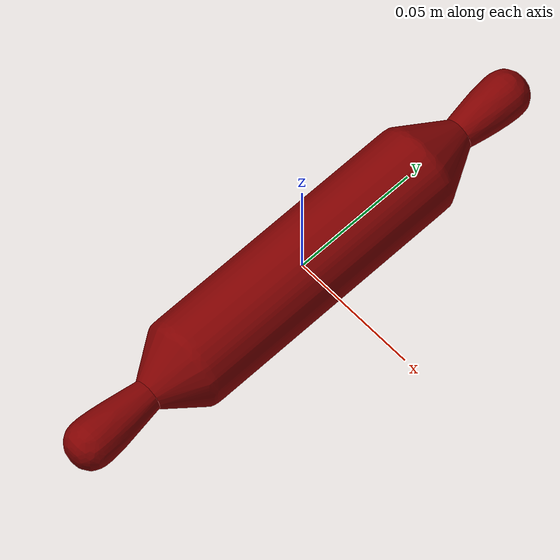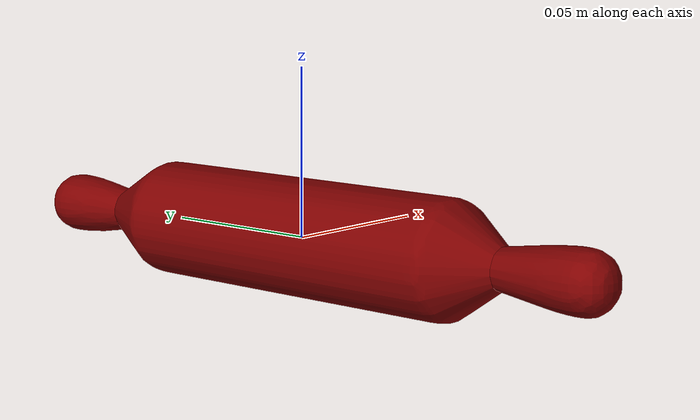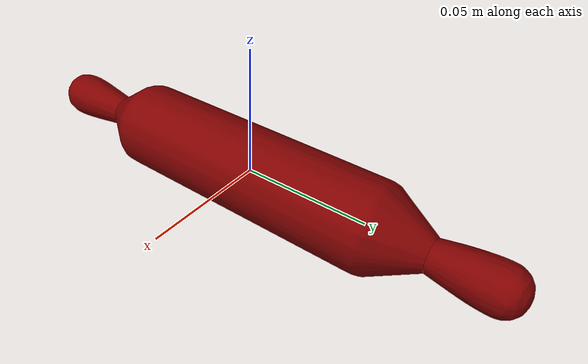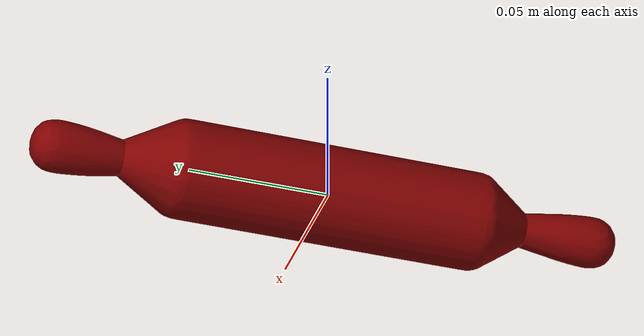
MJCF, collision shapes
<mujoco model="rolling_pin_5">
  <asset>
    <mesh file="visual/model_normalized_0.obj" name="model_normalized_0_vis" scale="0.21000000000000002 0.21000000000000002 0.21000000000000002" refquat="0.7071067811865475 0.0 0.0 0.7071067811865476"/>
    <mesh file="visual/model_normalized_1.obj" name="model_normalized_1_vis" scale="0.21000000000000002 0.21000000000000002 0.21000000000000002" refquat="0.7071067811865475 0.0 0.0 0.7071067811865476"/>
    <material name="Mat.002" specular="0.5" shininess="0.020101844" rgba="0.944162 0.841119 0.531990 1.0"/>
    <material name="material.008" specular="0.5" shininess="0.020101844" rgba="0.730112 0.477104 0.146248 1.0"/>
    <mesh file="collision/collision_mesh_collision_0.obj" name="rolling_collision_mesh_0" scale="0.21000000000000002 0.21000000000000002 0.21000000000000002" refquat="0.7071067811865475 0.0 0.0 0.7071067811865476"/>
    <mesh file="collision/collision_mesh_collision_1.obj" name="rolling_collision_mesh_1" scale="0.21000000000000002 0.21000000000000002 0.21000000000000002" refquat="0.7071067811865475 0.0 0.0 0.7071067811865476"/>
    <mesh file="collision/collision_mesh_collision_2.obj" name="rolling_collision_mesh_2" scale="0.21000000000000002 0.21000000000000002 0.21000000000000002" refquat="0.7071067811865475 0.0 0.0 0.7071067811865476"/>
  </asset>
  <default>
    <default class="region">
      <geom group="1" conaffinity="0" contype="0" rgba="0 1 0 0"/>
    </default>
    <default class="collision">
      <geom group="0" rgba="0.5 0 0 0.5" density="1000.0"/>
    </default>
  </default>
  <worldbody>
    <body>
      <body name="object">
        <geom solimp="0.998 0.998 0.001" solref="0.001 1" density="100" friction="0.95 0.3 0.1" type="mesh" mesh="model_normalized_0_vis" conaffinity="0" contype="0" group="1" material="Mat.002"/>
        <geom solimp="0.998 0.998 0.001" solref="0.001 1" density="100" friction="0.95 0.3 0.1" type="mesh" mesh="model_normalized_1_vis" conaffinity="0" contype="0" group="1" material="material.008"/>
        <geom class="region" name="reg_bbox" type="box" pos="0.0 0.0 0.0" size="0.017331350400000004 0.10596331830000003 0.0174046614"/>
        <geom mesh="rolling_collision_mesh_0" type="mesh" class="collision"/>
        <geom mesh="rolling_collision_mesh_1" type="mesh" class="collision"/>
        <geom mesh="rolling_collision_mesh_2" type="mesh" class="collision"/>
      </body>
    </body>
  </worldbody>
</mujoco>
